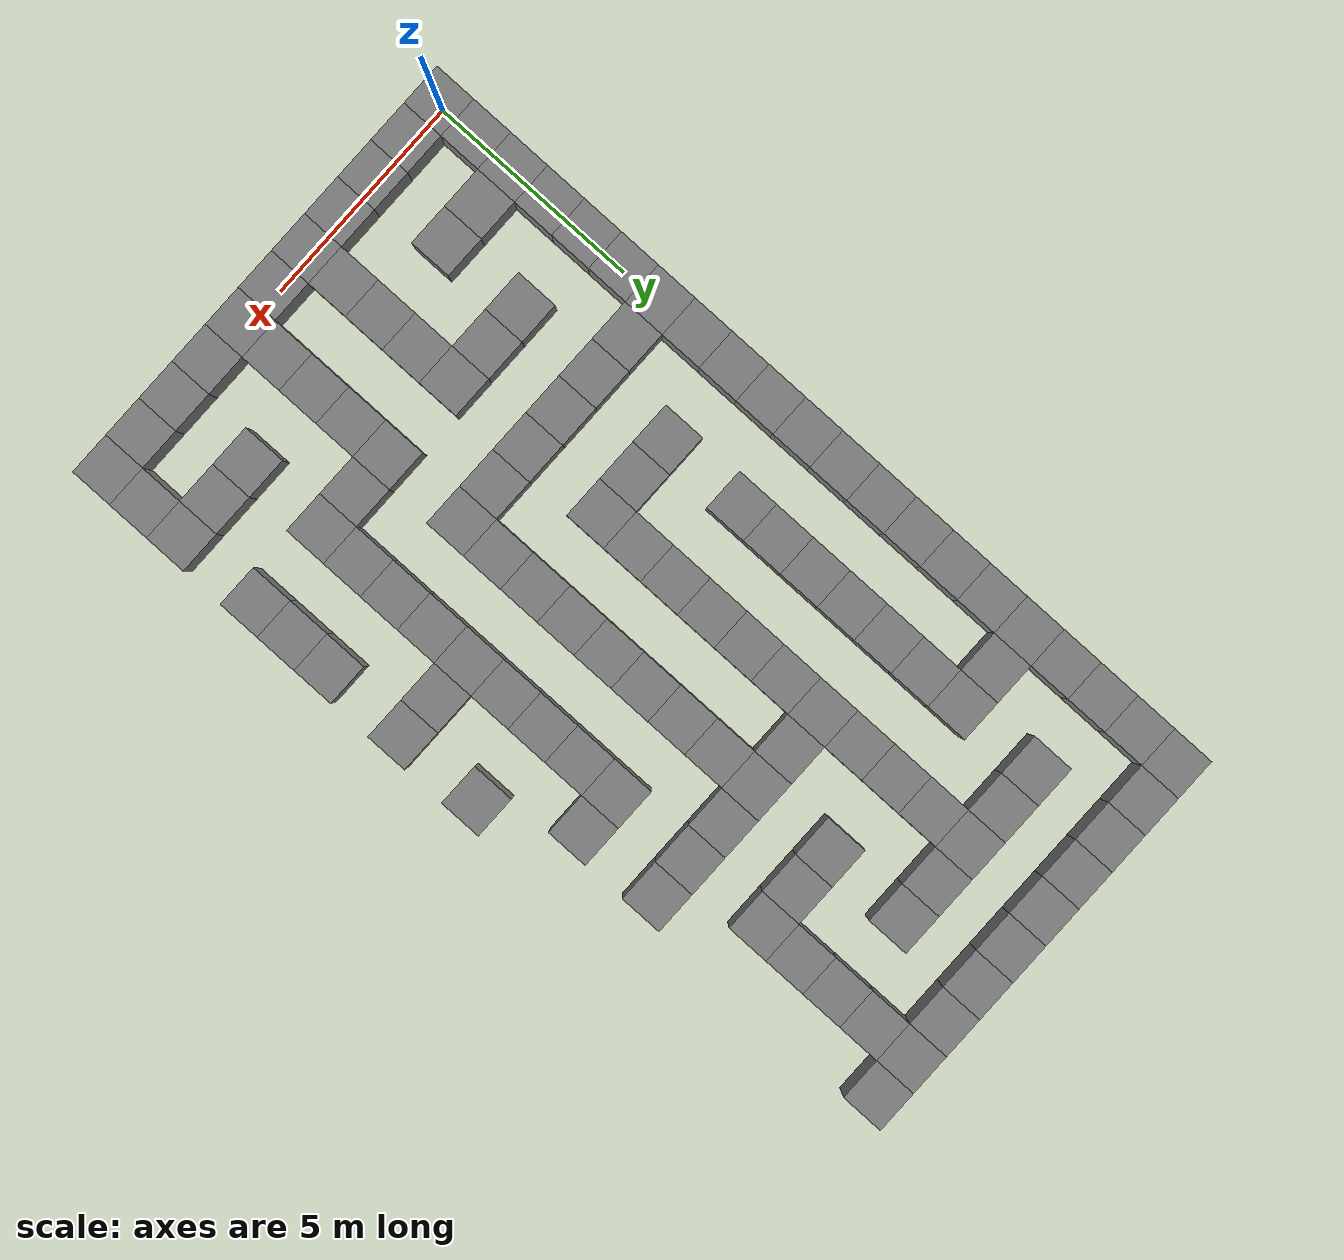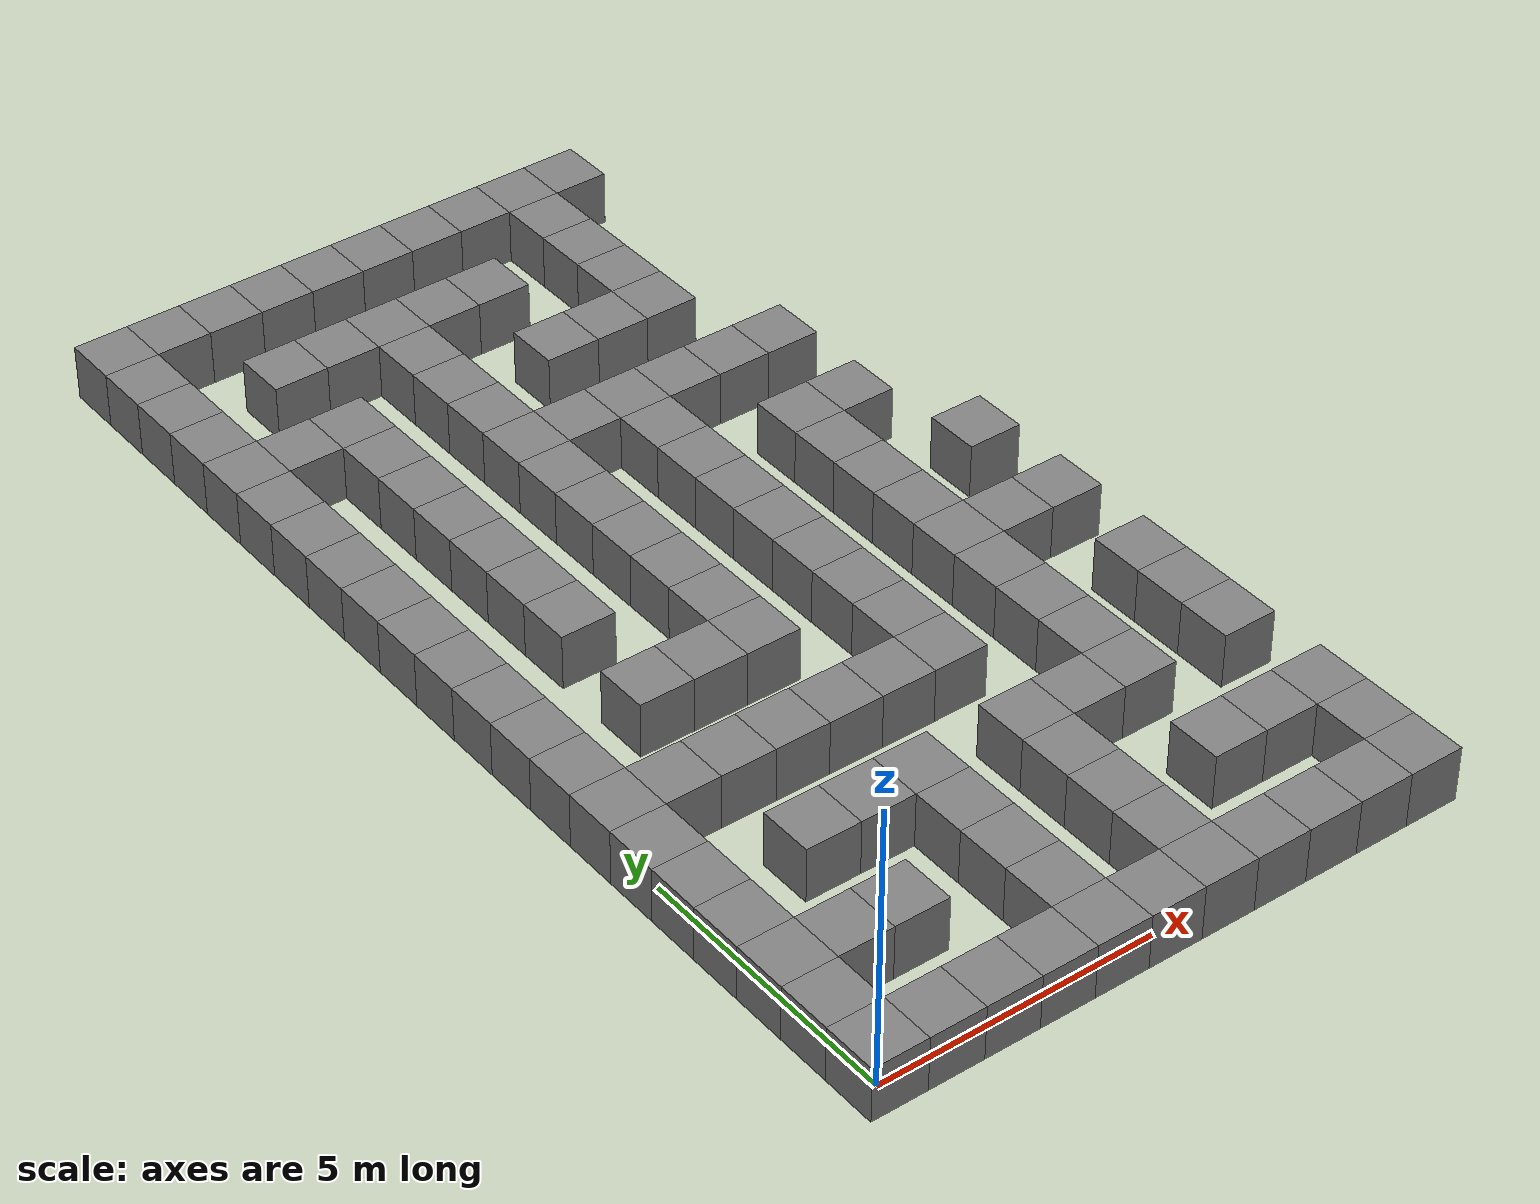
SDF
<sdf version="1.7">
 <model name="maze">
  <static>true</static>
  <link name="wall_0_0">
   <pose>0.0 0.0 0.5 0 0 0</pose>
   <collision name="collision"><geometry><box><size>1.0 1.0 1.0</size></box></geometry></collision>
   <visual name="visual">
    <geometry><box><size>1.0 1.0 1.0</size></box></geometry>
    <material><ambient>0.5 0.5 0.5 1</ambient></material>
   </visual>
  </link>
  <link name="wall_0_1">
   <pose>0.0 1.0 0.5 0 0 0</pose>
   <collision name="collision"><geometry><box><size>1.0 1.0 1.0</size></box></geometry></collision>
   <visual name="visual">
    <geometry><box><size>1.0 1.0 1.0</size></box></geometry>
    <material><ambient>0.5 0.5 0.5 1</ambient></material>
   </visual>
  </link>
  <link name="wall_0_2">
   <pose>0.0 2.0 0.5 0 0 0</pose>
   <collision name="collision"><geometry><box><size>1.0 1.0 1.0</size></box></geometry></collision>
   <visual name="visual">
    <geometry><box><size>1.0 1.0 1.0</size></box></geometry>
    <material><ambient>0.5 0.5 0.5 1</ambient></material>
   </visual>
  </link>
  <link name="wall_0_3">
   <pose>0.0 3.0 0.5 0 0 0</pose>
   <collision name="collision"><geometry><box><size>1.0 1.0 1.0</size></box></geometry></collision>
   <visual name="visual">
    <geometry><box><size>1.0 1.0 1.0</size></box></geometry>
    <material><ambient>0.5 0.5 0.5 1</ambient></material>
   </visual>
  </link>
  <link name="wall_0_4">
   <pose>0.0 4.0 0.5 0 0 0</pose>
   <collision name="collision"><geometry><box><size>1.0 1.0 1.0</size></box></geometry></collision>
   <visual name="visual">
    <geometry><box><size>1.0 1.0 1.0</size></box></geometry>
    <material><ambient>0.5 0.5 0.5 1</ambient></material>
   </visual>
  </link>
  <link name="wall_0_5">
   <pose>0.0 5.0 0.5 0 0 0</pose>
   <collision name="collision"><geometry><box><size>1.0 1.0 1.0</size></box></geometry></collision>
   <visual name="visual">
    <geometry><box><size>1.0 1.0 1.0</size></box></geometry>
    <material><ambient>0.5 0.5 0.5 1</ambient></material>
   </visual>
  </link>
  <link name="wall_0_6">
   <pose>0.0 6.0 0.5 0 0 0</pose>
   <collision name="collision"><geometry><box><size>1.0 1.0 1.0</size></box></geometry></collision>
   <visual name="visual">
    <geometry><box><size>1.0 1.0 1.0</size></box></geometry>
    <material><ambient>0.5 0.5 0.5 1</ambient></material>
   </visual>
  </link>
  <link name="wall_0_7">
   <pose>0.0 7.0 0.5 0 0 0</pose>
   <collision name="collision"><geometry><box><size>1.0 1.0 1.0</size></box></geometry></collision>
   <visual name="visual">
    <geometry><box><size>1.0 1.0 1.0</size></box></geometry>
    <material><ambient>0.5 0.5 0.5 1</ambient></material>
   </visual>
  </link>
  <link name="wall_0_8">
   <pose>0.0 8.0 0.5 0 0 0</pose>
   <collision name="collision"><geometry><box><size>1.0 1.0 1.0</size></box></geometry></collision>
   <visual name="visual">
    <geometry><box><size>1.0 1.0 1.0</size></box></geometry>
    <material><ambient>0.5 0.5 0.5 1</ambient></material>
   </visual>
  </link>
  <link name="wall_0_9">
   <pose>0.0 9.0 0.5 0 0 0</pose>
   <collision name="collision"><geometry><box><size>1.0 1.0 1.0</size></box></geometry></collision>
   <visual name="visual">
    <geometry><box><size>1.0 1.0 1.0</size></box></geometry>
    <material><ambient>0.5 0.5 0.5 1</ambient></material>
   </visual>
  </link>
  <link name="wall_0_10">
   <pose>0.0 10.0 0.5 0 0 0</pose>
   <collision name="collision"><geometry><box><size>1.0 1.0 1.0</size></box></geometry></collision>
   <visual name="visual">
    <geometry><box><size>1.0 1.0 1.0</size></box></geometry>
    <material><ambient>0.5 0.5 0.5 1</ambient></material>
   </visual>
  </link>
  <link name="wall_0_11">
   <pose>0.0 11.0 0.5 0 0 0</pose>
   <collision name="collision"><geometry><box><size>1.0 1.0 1.0</size></box></geometry></collision>
   <visual name="visual">
    <geometry><box><size>1.0 1.0 1.0</size></box></geometry>
    <material><ambient>0.5 0.5 0.5 1</ambient></material>
   </visual>
  </link>
  <link name="wall_0_12">
   <pose>0.0 12.0 0.5 0 0 0</pose>
   <collision name="collision"><geometry><box><size>1.0 1.0 1.0</size></box></geometry></collision>
   <visual name="visual">
    <geometry><box><size>1.0 1.0 1.0</size></box></geometry>
    <material><ambient>0.5 0.5 0.5 1</ambient></material>
   </visual>
  </link>
  <link name="wall_0_13">
   <pose>0.0 13.0 0.5 0 0 0</pose>
   <collision name="collision"><geometry><box><size>1.0 1.0 1.0</size></box></geometry></collision>
   <visual name="visual">
    <geometry><box><size>1.0 1.0 1.0</size></box></geometry>
    <material><ambient>0.5 0.5 0.5 1</ambient></material>
   </visual>
  </link>
  <link name="wall_0_14">
   <pose>0.0 14.0 0.5 0 0 0</pose>
   <collision name="collision"><geometry><box><size>1.0 1.0 1.0</size></box></geometry></collision>
   <visual name="visual">
    <geometry><box><size>1.0 1.0 1.0</size></box></geometry>
    <material><ambient>0.5 0.5 0.5 1</ambient></material>
   </visual>
  </link>
  <link name="wall_0_15">
   <pose>0.0 15.0 0.5 0 0 0</pose>
   <collision name="collision"><geometry><box><size>1.0 1.0 1.0</size></box></geometry></collision>
   <visual name="visual">
    <geometry><box><size>1.0 1.0 1.0</size></box></geometry>
    <material><ambient>0.5 0.5 0.5 1</ambient></material>
   </visual>
  </link>
  <link name="wall_0_16">
   <pose>0.0 16.0 0.5 0 0 0</pose>
   <collision name="collision"><geometry><box><size>1.0 1.0 1.0</size></box></geometry></collision>
   <visual name="visual">
    <geometry><box><size>1.0 1.0 1.0</size></box></geometry>
    <material><ambient>0.5 0.5 0.5 1</ambient></material>
   </visual>
  </link>
  <link name="wall_0_17">
   <pose>0.0 17.0 0.5 0 0 0</pose>
   <collision name="collision"><geometry><box><size>1.0 1.0 1.0</size></box></geometry></collision>
   <visual name="visual">
    <geometry><box><size>1.0 1.0 1.0</size></box></geometry>
    <material><ambient>0.5 0.5 0.5 1</ambient></material>
   </visual>
  </link>
  <link name="wall_0_18">
   <pose>0.0 18.0 0.5 0 0 0</pose>
   <collision name="collision"><geometry><box><size>1.0 1.0 1.0</size></box></geometry></collision>
   <visual name="visual">
    <geometry><box><size>1.0 1.0 1.0</size></box></geometry>
    <material><ambient>0.5 0.5 0.5 1</ambient></material>
   </visual>
  </link>
  <link name="wall_0_19">
   <pose>0.0 19.0 0.5 0 0 0</pose>
   <collision name="collision"><geometry><box><size>1.0 1.0 1.0</size></box></geometry></collision>
   <visual name="visual">
    <geometry><box><size>1.0 1.0 1.0</size></box></geometry>
    <material><ambient>0.5 0.5 0.5 1</ambient></material>
   </visual>
  </link>
  <link name="wall_0_20">
   <pose>0.0 20.0 0.5 0 0 0</pose>
   <collision name="collision"><geometry><box><size>1.0 1.0 1.0</size></box></geometry></collision>
   <visual name="visual">
    <geometry><box><size>1.0 1.0 1.0</size></box></geometry>
    <material><ambient>0.5 0.5 0.5 1</ambient></material>
   </visual>
  </link>
  <link name="wall_1_0">
   <pose>1.0 0.0 0.5 0 0 0</pose>
   <collision name="collision"><geometry><box><size>1.0 1.0 1.0</size></box></geometry></collision>
   <visual name="visual">
    <geometry><box><size>1.0 1.0 1.0</size></box></geometry>
    <material><ambient>0.5 0.5 0.5 1</ambient></material>
   </visual>
  </link>
  <link name="wall_1_2">
   <pose>1.0 2.0 0.5 0 0 0</pose>
   <collision name="collision"><geometry><box><size>1.0 1.0 1.0</size></box></geometry></collision>
   <visual name="visual">
    <geometry><box><size>1.0 1.0 1.0</size></box></geometry>
    <material><ambient>0.5 0.5 0.5 1</ambient></material>
   </visual>
  </link>
  <link name="wall_1_6">
   <pose>1.0 6.0 0.5 0 0 0</pose>
   <collision name="collision"><geometry><box><size>1.0 1.0 1.0</size></box></geometry></collision>
   <visual name="visual">
    <geometry><box><size>1.0 1.0 1.0</size></box></geometry>
    <material><ambient>0.5 0.5 0.5 1</ambient></material>
   </visual>
  </link>
  <link name="wall_1_16">
   <pose>1.0 16.0 0.5 0 0 0</pose>
   <collision name="collision"><geometry><box><size>1.0 1.0 1.0</size></box></geometry></collision>
   <visual name="visual">
    <geometry><box><size>1.0 1.0 1.0</size></box></geometry>
    <material><ambient>0.5 0.5 0.5 1</ambient></material>
   </visual>
  </link>
  <link name="wall_1_20">
   <pose>1.0 20.0 0.5 0 0 0</pose>
   <collision name="collision"><geometry><box><size>1.0 1.0 1.0</size></box></geometry></collision>
   <visual name="visual">
    <geometry><box><size>1.0 1.0 1.0</size></box></geometry>
    <material><ambient>0.5 0.5 0.5 1</ambient></material>
   </visual>
  </link>
  <link name="wall_2_0">
   <pose>2.0 0.0 0.5 0 0 0</pose>
   <collision name="collision"><geometry><box><size>1.0 1.0 1.0</size></box></geometry></collision>
   <visual name="visual">
    <geometry><box><size>1.0 1.0 1.0</size></box></geometry>
    <material><ambient>0.5 0.5 0.5 1</ambient></material>
   </visual>
  </link>
  <link name="wall_2_2">
   <pose>2.0 2.0 0.5 0 0 0</pose>
   <collision name="collision"><geometry><box><size>1.0 1.0 1.0</size></box></geometry></collision>
   <visual name="visual">
    <geometry><box><size>1.0 1.0 1.0</size></box></geometry>
    <material><ambient>0.5 0.5 0.5 1</ambient></material>
   </visual>
  </link>
  <link name="wall_2_4">
   <pose>2.0 4.0 0.5 0 0 0</pose>
   <collision name="collision"><geometry><box><size>1.0 1.0 1.0</size></box></geometry></collision>
   <visual name="visual">
    <geometry><box><size>1.0 1.0 1.0</size></box></geometry>
    <material><ambient>0.5 0.5 0.5 1</ambient></material>
   </visual>
  </link>
  <link name="wall_2_6">
   <pose>2.0 6.0 0.5 0 0 0</pose>
   <collision name="collision"><geometry><box><size>1.0 1.0 1.0</size></box></geometry></collision>
   <visual name="visual">
    <geometry><box><size>1.0 1.0 1.0</size></box></geometry>
    <material><ambient>0.5 0.5 0.5 1</ambient></material>
   </visual>
  </link>
  <link name="wall_2_8">
   <pose>2.0 8.0 0.5 0 0 0</pose>
   <collision name="collision"><geometry><box><size>1.0 1.0 1.0</size></box></geometry></collision>
   <visual name="visual">
    <geometry><box><size>1.0 1.0 1.0</size></box></geometry>
    <material><ambient>0.5 0.5 0.5 1</ambient></material>
   </visual>
  </link>
  <link name="wall_2_10">
   <pose>2.0 10.0 0.5 0 0 0</pose>
   <collision name="collision"><geometry><box><size>1.0 1.0 1.0</size></box></geometry></collision>
   <visual name="visual">
    <geometry><box><size>1.0 1.0 1.0</size></box></geometry>
    <material><ambient>0.5 0.5 0.5 1</ambient></material>
   </visual>
  </link>
  <link name="wall_2_11">
   <pose>2.0 11.0 0.5 0 0 0</pose>
   <collision name="collision"><geometry><box><size>1.0 1.0 1.0</size></box></geometry></collision>
   <visual name="visual">
    <geometry><box><size>1.0 1.0 1.0</size></box></geometry>
    <material><ambient>0.5 0.5 0.5 1</ambient></material>
   </visual>
  </link>
  <link name="wall_2_12">
   <pose>2.0 12.0 0.5 0 0 0</pose>
   <collision name="collision"><geometry><box><size>1.0 1.0 1.0</size></box></geometry></collision>
   <visual name="visual">
    <geometry><box><size>1.0 1.0 1.0</size></box></geometry>
    <material><ambient>0.5 0.5 0.5 1</ambient></material>
   </visual>
  </link>
  <link name="wall_2_13">
   <pose>2.0 13.0 0.5 0 0 0</pose>
   <collision name="collision"><geometry><box><size>1.0 1.0 1.0</size></box></geometry></collision>
   <visual name="visual">
    <geometry><box><size>1.0 1.0 1.0</size></box></geometry>
    <material><ambient>0.5 0.5 0.5 1</ambient></material>
   </visual>
  </link>
  <link name="wall_2_14">
   <pose>2.0 14.0 0.5 0 0 0</pose>
   <collision name="collision"><geometry><box><size>1.0 1.0 1.0</size></box></geometry></collision>
   <visual name="visual">
    <geometry><box><size>1.0 1.0 1.0</size></box></geometry>
    <material><ambient>0.5 0.5 0.5 1</ambient></material>
   </visual>
  </link>
  <link name="wall_2_15">
   <pose>2.0 15.0 0.5 0 0 0</pose>
   <collision name="collision"><geometry><box><size>1.0 1.0 1.0</size></box></geometry></collision>
   <visual name="visual">
    <geometry><box><size>1.0 1.0 1.0</size></box></geometry>
    <material><ambient>0.5 0.5 0.5 1</ambient></material>
   </visual>
  </link>
  <link name="wall_2_16">
   <pose>2.0 16.0 0.5 0 0 0</pose>
   <collision name="collision"><geometry><box><size>1.0 1.0 1.0</size></box></geometry></collision>
   <visual name="visual">
    <geometry><box><size>1.0 1.0 1.0</size></box></geometry>
    <material><ambient>0.5 0.5 0.5 1</ambient></material>
   </visual>
  </link>
  <link name="wall_2_18">
   <pose>2.0 18.0 0.5 0 0 0</pose>
   <collision name="collision"><geometry><box><size>1.0 1.0 1.0</size></box></geometry></collision>
   <visual name="visual">
    <geometry><box><size>1.0 1.0 1.0</size></box></geometry>
    <material><ambient>0.5 0.5 0.5 1</ambient></material>
   </visual>
  </link>
  <link name="wall_2_20">
   <pose>2.0 20.0 0.5 0 0 0</pose>
   <collision name="collision"><geometry><box><size>1.0 1.0 1.0</size></box></geometry></collision>
   <visual name="visual">
    <geometry><box><size>1.0 1.0 1.0</size></box></geometry>
    <material><ambient>0.5 0.5 0.5 1</ambient></material>
   </visual>
  </link>
  <link name="wall_3_0">
   <pose>3.0 0.0 0.5 0 0 0</pose>
   <collision name="collision"><geometry><box><size>1.0 1.0 1.0</size></box></geometry></collision>
   <visual name="visual">
    <geometry><box><size>1.0 1.0 1.0</size></box></geometry>
    <material><ambient>0.5 0.5 0.5 1</ambient></material>
   </visual>
  </link>
  <link name="wall_3_4">
   <pose>3.0 4.0 0.5 0 0 0</pose>
   <collision name="collision"><geometry><box><size>1.0 1.0 1.0</size></box></geometry></collision>
   <visual name="visual">
    <geometry><box><size>1.0 1.0 1.0</size></box></geometry>
    <material><ambient>0.5 0.5 0.5 1</ambient></material>
   </visual>
  </link>
  <link name="wall_3_6">
   <pose>3.0 6.0 0.5 0 0 0</pose>
   <collision name="collision"><geometry><box><size>1.0 1.0 1.0</size></box></geometry></collision>
   <visual name="visual">
    <geometry><box><size>1.0 1.0 1.0</size></box></geometry>
    <material><ambient>0.5 0.5 0.5 1</ambient></material>
   </visual>
  </link>
  <link name="wall_3_8">
   <pose>3.0 8.0 0.5 0 0 0</pose>
   <collision name="collision"><geometry><box><size>1.0 1.0 1.0</size></box></geometry></collision>
   <visual name="visual">
    <geometry><box><size>1.0 1.0 1.0</size></box></geometry>
    <material><ambient>0.5 0.5 0.5 1</ambient></material>
   </visual>
  </link>
  <link name="wall_3_18">
   <pose>3.0 18.0 0.5 0 0 0</pose>
   <collision name="collision"><geometry><box><size>1.0 1.0 1.0</size></box></geometry></collision>
   <visual name="visual">
    <geometry><box><size>1.0 1.0 1.0</size></box></geometry>
    <material><ambient>0.5 0.5 0.5 1</ambient></material>
   </visual>
  </link>
  <link name="wall_3_20">
   <pose>3.0 20.0 0.5 0 0 0</pose>
   <collision name="collision"><geometry><box><size>1.0 1.0 1.0</size></box></geometry></collision>
   <visual name="visual">
    <geometry><box><size>1.0 1.0 1.0</size></box></geometry>
    <material><ambient>0.5 0.5 0.5 1</ambient></material>
   </visual>
  </link>
  <link name="wall_4_0">
   <pose>4.0 0.0 0.5 0 0 0</pose>
   <collision name="collision"><geometry><box><size>1.0 1.0 1.0</size></box></geometry></collision>
   <visual name="visual">
    <geometry><box><size>1.0 1.0 1.0</size></box></geometry>
    <material><ambient>0.5 0.5 0.5 1</ambient></material>
   </visual>
  </link>
  <link name="wall_4_1">
   <pose>4.0 1.0 0.5 0 0 0</pose>
   <collision name="collision"><geometry><box><size>1.0 1.0 1.0</size></box></geometry></collision>
   <visual name="visual">
    <geometry><box><size>1.0 1.0 1.0</size></box></geometry>
    <material><ambient>0.5 0.5 0.5 1</ambient></material>
   </visual>
  </link>
  <link name="wall_4_2">
   <pose>4.0 2.0 0.5 0 0 0</pose>
   <collision name="collision"><geometry><box><size>1.0 1.0 1.0</size></box></geometry></collision>
   <visual name="visual">
    <geometry><box><size>1.0 1.0 1.0</size></box></geometry>
    <material><ambient>0.5 0.5 0.5 1</ambient></material>
   </visual>
  </link>
  <link name="wall_4_3">
   <pose>4.0 3.0 0.5 0 0 0</pose>
   <collision name="collision"><geometry><box><size>1.0 1.0 1.0</size></box></geometry></collision>
   <visual name="visual">
    <geometry><box><size>1.0 1.0 1.0</size></box></geometry>
    <material><ambient>0.5 0.5 0.5 1</ambient></material>
   </visual>
  </link>
  <link name="wall_4_4">
   <pose>4.0 4.0 0.5 0 0 0</pose>
   <collision name="collision"><geometry><box><size>1.0 1.0 1.0</size></box></geometry></collision>
   <visual name="visual">
    <geometry><box><size>1.0 1.0 1.0</size></box></geometry>
    <material><ambient>0.5 0.5 0.5 1</ambient></material>
   </visual>
  </link>
  <link name="wall_4_6">
   <pose>4.0 6.0 0.5 0 0 0</pose>
   <collision name="collision"><geometry><box><size>1.0 1.0 1.0</size></box></geometry></collision>
   <visual name="visual">
    <geometry><box><size>1.0 1.0 1.0</size></box></geometry>
    <material><ambient>0.5 0.5 0.5 1</ambient></material>
   </visual>
  </link>
  <link name="wall_4_8">
   <pose>4.0 8.0 0.5 0 0 0</pose>
   <collision name="collision"><geometry><box><size>1.0 1.0 1.0</size></box></geometry></collision>
   <visual name="visual">
    <geometry><box><size>1.0 1.0 1.0</size></box></geometry>
    <material><ambient>0.5 0.5 0.5 1</ambient></material>
   </visual>
  </link>
  <link name="wall_4_9">
   <pose>4.0 9.0 0.5 0 0 0</pose>
   <collision name="collision"><geometry><box><size>1.0 1.0 1.0</size></box></geometry></collision>
   <visual name="visual">
    <geometry><box><size>1.0 1.0 1.0</size></box></geometry>
    <material><ambient>0.5 0.5 0.5 1</ambient></material>
   </visual>
  </link>
  <link name="wall_4_10">
   <pose>4.0 10.0 0.5 0 0 0</pose>
   <collision name="collision"><geometry><box><size>1.0 1.0 1.0</size></box></geometry></collision>
   <visual name="visual">
    <geometry><box><size>1.0 1.0 1.0</size></box></geometry>
    <material><ambient>0.5 0.5 0.5 1</ambient></material>
   </visual>
  </link>
  <link name="wall_4_11">
   <pose>4.0 11.0 0.5 0 0 0</pose>
   <collision name="collision"><geometry><box><size>1.0 1.0 1.0</size></box></geometry></collision>
   <visual name="visual">
    <geometry><box><size>1.0 1.0 1.0</size></box></geometry>
    <material><ambient>0.5 0.5 0.5 1</ambient></material>
   </visual>
  </link>
  <link name="wall_4_12">
   <pose>4.0 12.0 0.5 0 0 0</pose>
   <collision name="collision"><geometry><box><size>1.0 1.0 1.0</size></box></geometry></collision>
   <visual name="visual">
    <geometry><box><size>1.0 1.0 1.0</size></box></geometry>
    <material><ambient>0.5 0.5 0.5 1</ambient></material>
   </visual>
  </link>
  <link name="wall_4_13">
   <pose>4.0 13.0 0.5 0 0 0</pose>
   <collision name="collision"><geometry><box><size>1.0 1.0 1.0</size></box></geometry></collision>
   <visual name="visual">
    <geometry><box><size>1.0 1.0 1.0</size></box></geometry>
    <material><ambient>0.5 0.5 0.5 1</ambient></material>
   </visual>
  </link>
  <link name="wall_4_14">
   <pose>4.0 14.0 0.5 0 0 0</pose>
   <collision name="collision"><geometry><box><size>1.0 1.0 1.0</size></box></geometry></collision>
   <visual name="visual">
    <geometry><box><size>1.0 1.0 1.0</size></box></geometry>
    <material><ambient>0.5 0.5 0.5 1</ambient></material>
   </visual>
  </link>
  <link name="wall_4_15">
   <pose>4.0 15.0 0.5 0 0 0</pose>
   <collision name="collision"><geometry><box><size>1.0 1.0 1.0</size></box></geometry></collision>
   <visual name="visual">
    <geometry><box><size>1.0 1.0 1.0</size></box></geometry>
    <material><ambient>0.5 0.5 0.5 1</ambient></material>
   </visual>
  </link>
  <link name="wall_4_16">
   <pose>4.0 16.0 0.5 0 0 0</pose>
   <collision name="collision"><geometry><box><size>1.0 1.0 1.0</size></box></geometry></collision>
   <visual name="visual">
    <geometry><box><size>1.0 1.0 1.0</size></box></geometry>
    <material><ambient>0.5 0.5 0.5 1</ambient></material>
   </visual>
  </link>
  <link name="wall_4_17">
   <pose>4.0 17.0 0.5 0 0 0</pose>
   <collision name="collision"><geometry><box><size>1.0 1.0 1.0</size></box></geometry></collision>
   <visual name="visual">
    <geometry><box><size>1.0 1.0 1.0</size></box></geometry>
    <material><ambient>0.5 0.5 0.5 1</ambient></material>
   </visual>
  </link>
  <link name="wall_4_18">
   <pose>4.0 18.0 0.5 0 0 0</pose>
   <collision name="collision"><geometry><box><size>1.0 1.0 1.0</size></box></geometry></collision>
   <visual name="visual">
    <geometry><box><size>1.0 1.0 1.0</size></box></geometry>
    <material><ambient>0.5 0.5 0.5 1</ambient></material>
   </visual>
  </link>
  <link name="wall_4_20">
   <pose>4.0 20.0 0.5 0 0 0</pose>
   <collision name="collision"><geometry><box><size>1.0 1.0 1.0</size></box></geometry></collision>
   <visual name="visual">
    <geometry><box><size>1.0 1.0 1.0</size></box></geometry>
    <material><ambient>0.5 0.5 0.5 1</ambient></material>
   </visual>
  </link>
  <link name="wall_5_0">
   <pose>5.0 0.0 0.5 0 0 0</pose>
   <collision name="collision"><geometry><box><size>1.0 1.0 1.0</size></box></geometry></collision>
   <visual name="visual">
    <geometry><box><size>1.0 1.0 1.0</size></box></geometry>
    <material><ambient>0.5 0.5 0.5 1</ambient></material>
   </visual>
  </link>
  <link name="wall_5_6">
   <pose>5.0 6.0 0.5 0 0 0</pose>
   <collision name="collision"><geometry><box><size>1.0 1.0 1.0</size></box></geometry></collision>
   <visual name="visual">
    <geometry><box><size>1.0 1.0 1.0</size></box></geometry>
    <material><ambient>0.5 0.5 0.5 1</ambient></material>
   </visual>
  </link>
  <link name="wall_5_14">
   <pose>5.0 14.0 0.5 0 0 0</pose>
   <collision name="collision"><geometry><box><size>1.0 1.0 1.0</size></box></geometry></collision>
   <visual name="visual">
    <geometry><box><size>1.0 1.0 1.0</size></box></geometry>
    <material><ambient>0.5 0.5 0.5 1</ambient></material>
   </visual>
  </link>
  <link name="wall_5_18">
   <pose>5.0 18.0 0.5 0 0 0</pose>
   <collision name="collision"><geometry><box><size>1.0 1.0 1.0</size></box></geometry></collision>
   <visual name="visual">
    <geometry><box><size>1.0 1.0 1.0</size></box></geometry>
    <material><ambient>0.5 0.5 0.5 1</ambient></material>
   </visual>
  </link>
  <link name="wall_5_20">
   <pose>5.0 20.0 0.5 0 0 0</pose>
   <collision name="collision"><geometry><box><size>1.0 1.0 1.0</size></box></geometry></collision>
   <visual name="visual">
    <geometry><box><size>1.0 1.0 1.0</size></box></geometry>
    <material><ambient>0.5 0.5 0.5 1</ambient></material>
   </visual>
  </link>
  <link name="wall_6_0">
   <pose>6.0 0.0 0.5 0 0 0</pose>
   <collision name="collision"><geometry><box><size>1.0 1.0 1.0</size></box></geometry></collision>
   <visual name="visual">
    <geometry><box><size>1.0 1.0 1.0</size></box></geometry>
    <material><ambient>0.5 0.5 0.5 1</ambient></material>
   </visual>
  </link>
  <link name="wall_6_1">
   <pose>6.0 1.0 0.5 0 0 0</pose>
   <collision name="collision"><geometry><box><size>1.0 1.0 1.0</size></box></geometry></collision>
   <visual name="visual">
    <geometry><box><size>1.0 1.0 1.0</size></box></geometry>
    <material><ambient>0.5 0.5 0.5 1</ambient></material>
   </visual>
  </link>
  <link name="wall_6_2">
   <pose>6.0 2.0 0.5 0 0 0</pose>
   <collision name="collision"><geometry><box><size>1.0 1.0 1.0</size></box></geometry></collision>
   <visual name="visual">
    <geometry><box><size>1.0 1.0 1.0</size></box></geometry>
    <material><ambient>0.5 0.5 0.5 1</ambient></material>
   </visual>
  </link>
  <link name="wall_6_3">
   <pose>6.0 3.0 0.5 0 0 0</pose>
   <collision name="collision"><geometry><box><size>1.0 1.0 1.0</size></box></geometry></collision>
   <visual name="visual">
    <geometry><box><size>1.0 1.0 1.0</size></box></geometry>
    <material><ambient>0.5 0.5 0.5 1</ambient></material>
   </visual>
  </link>
  <link name="wall_6_4">
   <pose>6.0 4.0 0.5 0 0 0</pose>
   <collision name="collision"><geometry><box><size>1.0 1.0 1.0</size></box></geometry></collision>
   <visual name="visual">
    <geometry><box><size>1.0 1.0 1.0</size></box></geometry>
    <material><ambient>0.5 0.5 0.5 1</ambient></material>
   </visual>
  </link>
  <link name="wall_6_6">
   <pose>6.0 6.0 0.5 0 0 0</pose>
   <collision name="collision"><geometry><box><size>1.0 1.0 1.0</size></box></geometry></collision>
   <visual name="visual">
    <geometry><box><size>1.0 1.0 1.0</size></box></geometry>
    <material><ambient>0.5 0.5 0.5 1</ambient></material>
   </visual>
  </link>
  <link name="wall_6_7">
   <pose>6.0 7.0 0.5 0 0 0</pose>
   <collision name="collision"><geometry><box><size>1.0 1.0 1.0</size></box></geometry></collision>
   <visual name="visual">
    <geometry><box><size>1.0 1.0 1.0</size></box></geometry>
    <material><ambient>0.5 0.5 0.5 1</ambient></material>
   </visual>
  </link>
  <link name="wall_6_8">
   <pose>6.0 8.0 0.5 0 0 0</pose>
   <collision name="collision"><geometry><box><size>1.0 1.0 1.0</size></box></geometry></collision>
   <visual name="visual">
    <geometry><box><size>1.0 1.0 1.0</size></box></geometry>
    <material><ambient>0.5 0.5 0.5 1</ambient></material>
   </visual>
  </link>
  <link name="wall_6_9">
   <pose>6.0 9.0 0.5 0 0 0</pose>
   <collision name="collision"><geometry><box><size>1.0 1.0 1.0</size></box></geometry></collision>
   <visual name="visual">
    <geometry><box><size>1.0 1.0 1.0</size></box></geometry>
    <material><ambient>0.5 0.5 0.5 1</ambient></material>
   </visual>
  </link>
  <link name="wall_6_10">
   <pose>6.0 10.0 0.5 0 0 0</pose>
   <collision name="collision"><geometry><box><size>1.0 1.0 1.0</size></box></geometry></collision>
   <visual name="visual">
    <geometry><box><size>1.0 1.0 1.0</size></box></geometry>
    <material><ambient>0.5 0.5 0.5 1</ambient></material>
   </visual>
  </link>
  <link name="wall_6_11">
   <pose>6.0 11.0 0.5 0 0 0</pose>
   <collision name="collision"><geometry><box><size>1.0 1.0 1.0</size></box></geometry></collision>
   <visual name="visual">
    <geometry><box><size>1.0 1.0 1.0</size></box></geometry>
    <material><ambient>0.5 0.5 0.5 1</ambient></material>
   </visual>
  </link>
  <link name="wall_6_12">
   <pose>6.0 12.0 0.5 0 0 0</pose>
   <collision name="collision"><geometry><box><size>1.0 1.0 1.0</size></box></geometry></collision>
   <visual name="visual">
    <geometry><box><size>1.0 1.0 1.0</size></box></geometry>
    <material><ambient>0.5 0.5 0.5 1</ambient></material>
   </visual>
  </link>
  <link name="wall_6_13">
   <pose>6.0 13.0 0.5 0 0 0</pose>
   <collision name="collision"><geometry><box><size>1.0 1.0 1.0</size></box></geometry></collision>
   <visual name="visual">
    <geometry><box><size>1.0 1.0 1.0</size></box></geometry>
    <material><ambient>0.5 0.5 0.5 1</ambient></material>
   </visual>
  </link>
  <link name="wall_6_14">
   <pose>6.0 14.0 0.5 0 0 0</pose>
   <collision name="collision"><geometry><box><size>1.0 1.0 1.0</size></box></geometry></collision>
   <visual name="visual">
    <geometry><box><size>1.0 1.0 1.0</size></box></geometry>
    <material><ambient>0.5 0.5 0.5 1</ambient></material>
   </visual>
  </link>
  <link name="wall_6_16">
   <pose>6.0 16.0 0.5 0 0 0</pose>
   <collision name="collision"><geometry><box><size>1.0 1.0 1.0</size></box></geometry></collision>
   <visual name="visual">
    <geometry><box><size>1.0 1.0 1.0</size></box></geometry>
    <material><ambient>0.5 0.5 0.5 1</ambient></material>
   </visual>
  </link>
  <link name="wall_6_18">
   <pose>6.0 18.0 0.5 0 0 0</pose>
   <collision name="collision"><geometry><box><size>1.0 1.0 1.0</size></box></geometry></collision>
   <visual name="visual">
    <geometry><box><size>1.0 1.0 1.0</size></box></geometry>
    <material><ambient>0.5 0.5 0.5 1</ambient></material>
   </visual>
  </link>
  <link name="wall_6_20">
   <pose>6.0 20.0 0.5 0 0 0</pose>
   <collision name="collision"><geometry><box><size>1.0 1.0 1.0</size></box></geometry></collision>
   <visual name="visual">
    <geometry><box><size>1.0 1.0 1.0</size></box></geometry>
    <material><ambient>0.5 0.5 0.5 1</ambient></material>
   </visual>
  </link>
  <link name="wall_7_0">
   <pose>7.0 0.0 0.5 0 0 0</pose>
   <collision name="collision"><geometry><box><size>1.0 1.0 1.0</size></box></geometry></collision>
   <visual name="visual">
    <geometry><box><size>1.0 1.0 1.0</size></box></geometry>
    <material><ambient>0.5 0.5 0.5 1</ambient></material>
   </visual>
  </link>
  <link name="wall_7_4">
   <pose>7.0 4.0 0.5 0 0 0</pose>
   <collision name="collision"><geometry><box><size>1.0 1.0 1.0</size></box></geometry></collision>
   <visual name="visual">
    <geometry><box><size>1.0 1.0 1.0</size></box></geometry>
    <material><ambient>0.5 0.5 0.5 1</ambient></material>
   </visual>
  </link>
  <link name="wall_7_14">
   <pose>7.0 14.0 0.5 0 0 0</pose>
   <collision name="collision"><geometry><box><size>1.0 1.0 1.0</size></box></geometry></collision>
   <visual name="visual">
    <geometry><box><size>1.0 1.0 1.0</size></box></geometry>
    <material><ambient>0.5 0.5 0.5 1</ambient></material>
   </visual>
  </link>
  <link name="wall_7_16">
   <pose>7.0 16.0 0.5 0 0 0</pose>
   <collision name="collision"><geometry><box><size>1.0 1.0 1.0</size></box></geometry></collision>
   <visual name="visual">
    <geometry><box><size>1.0 1.0 1.0</size></box></geometry>
    <material><ambient>0.5 0.5 0.5 1</ambient></material>
   </visual>
  </link>
  <link name="wall_7_20">
   <pose>7.0 20.0 0.5 0 0 0</pose>
   <collision name="collision"><geometry><box><size>1.0 1.0 1.0</size></box></geometry></collision>
   <visual name="visual">
    <geometry><box><size>1.0 1.0 1.0</size></box></geometry>
    <material><ambient>0.5 0.5 0.5 1</ambient></material>
   </visual>
  </link>
  <link name="wall_8_0">
   <pose>8.0 0.0 0.5 0 0 0</pose>
   <collision name="collision"><geometry><box><size>1.0 1.0 1.0</size></box></geometry></collision>
   <visual name="visual">
    <geometry><box><size>1.0 1.0 1.0</size></box></geometry>
    <material><ambient>0.5 0.5 0.5 1</ambient></material>
   </visual>
  </link>
  <link name="wall_8_2">
   <pose>8.0 2.0 0.5 0 0 0</pose>
   <collision name="collision"><geometry><box><size>1.0 1.0 1.0</size></box></geometry></collision>
   <visual name="visual">
    <geometry><box><size>1.0 1.0 1.0</size></box></geometry>
    <material><ambient>0.5 0.5 0.5 1</ambient></material>
   </visual>
  </link>
  <link name="wall_8_4">
   <pose>8.0 4.0 0.5 0 0 0</pose>
   <collision name="collision"><geometry><box><size>1.0 1.0 1.0</size></box></geometry></collision>
   <visual name="visual">
    <geometry><box><size>1.0 1.0 1.0</size></box></geometry>
    <material><ambient>0.5 0.5 0.5 1</ambient></material>
   </visual>
  </link>
  <link name="wall_8_5">
   <pose>8.0 5.0 0.5 0 0 0</pose>
   <collision name="collision"><geometry><box><size>1.0 1.0 1.0</size></box></geometry></collision>
   <visual name="visual">
    <geometry><box><size>1.0 1.0 1.0</size></box></geometry>
    <material><ambient>0.5 0.5 0.5 1</ambient></material>
   </visual>
  </link>
  <link name="wall_8_6">
   <pose>8.0 6.0 0.5 0 0 0</pose>
   <collision name="collision"><geometry><box><size>1.0 1.0 1.0</size></box></geometry></collision>
   <visual name="visual">
    <geometry><box><size>1.0 1.0 1.0</size></box></geometry>
    <material><ambient>0.5 0.5 0.5 1</ambient></material>
   </visual>
  </link>
  <link name="wall_8_7">
   <pose>8.0 7.0 0.5 0 0 0</pose>
   <collision name="collision"><geometry><box><size>1.0 1.0 1.0</size></box></geometry></collision>
   <visual name="visual">
    <geometry><box><size>1.0 1.0 1.0</size></box></geometry>
    <material><ambient>0.5 0.5 0.5 1</ambient></material>
   </visual>
  </link>
  <link name="wall_8_8">
   <pose>8.0 8.0 0.5 0 0 0</pose>
   <collision name="collision"><geometry><box><size>1.0 1.0 1.0</size></box></geometry></collision>
   <visual name="visual">
    <geometry><box><size>1.0 1.0 1.0</size></box></geometry>
    <material><ambient>0.5 0.5 0.5 1</ambient></material>
   </visual>
  </link>
  <link name="wall_8_9">
   <pose>8.0 9.0 0.5 0 0 0</pose>
   <collision name="collision"><geometry><box><size>1.0 1.0 1.0</size></box></geometry></collision>
   <visual name="visual">
    <geometry><box><size>1.0 1.0 1.0</size></box></geometry>
    <material><ambient>0.5 0.5 0.5 1</ambient></material>
   </visual>
  </link>
  <link name="wall_8_10">
   <pose>8.0 10.0 0.5 0 0 0</pose>
   <collision name="collision"><geometry><box><size>1.0 1.0 1.0</size></box></geometry></collision>
   <visual name="visual">
    <geometry><box><size>1.0 1.0 1.0</size></box></geometry>
    <material><ambient>0.5 0.5 0.5 1</ambient></material>
   </visual>
  </link>
  <link name="wall_8_11">
   <pose>8.0 11.0 0.5 0 0 0</pose>
   <collision name="collision"><geometry><box><size>1.0 1.0 1.0</size></box></geometry></collision>
   <visual name="visual">
    <geometry><box><size>1.0 1.0 1.0</size></box></geometry>
    <material><ambient>0.5 0.5 0.5 1</ambient></material>
   </visual>
  </link>
  <link name="wall_8_12">
   <pose>8.0 12.0 0.5 0 0 0</pose>
   <collision name="collision"><geometry><box><size>1.0 1.0 1.0</size></box></geometry></collision>
   <visual name="visual">
    <geometry><box><size>1.0 1.0 1.0</size></box></geometry>
    <material><ambient>0.5 0.5 0.5 1</ambient></material>
   </visual>
  </link>
  <link name="wall_8_14">
   <pose>8.0 14.0 0.5 0 0 0</pose>
   <collision name="collision"><geometry><box><size>1.0 1.0 1.0</size></box></geometry></collision>
   <visual name="visual">
    <geometry><box><size>1.0 1.0 1.0</size></box></geometry>
    <material><ambient>0.5 0.5 0.5 1</ambient></material>
   </visual>
  </link>
  <link name="wall_8_16">
   <pose>8.0 16.0 0.5 0 0 0</pose>
   <collision name="collision"><geometry><box><size>1.0 1.0 1.0</size></box></geometry></collision>
   <visual name="visual">
    <geometry><box><size>1.0 1.0 1.0</size></box></geometry>
    <material><ambient>0.5 0.5 0.5 1</ambient></material>
   </visual>
  </link>
  <link name="wall_8_17">
   <pose>8.0 17.0 0.5 0 0 0</pose>
   <collision name="collision"><geometry><box><size>1.0 1.0 1.0</size></box></geometry></collision>
   <visual name="visual">
    <geometry><box><size>1.0 1.0 1.0</size></box></geometry>
    <material><ambient>0.5 0.5 0.5 1</ambient></material>
   </visual>
  </link>
  <link name="wall_8_18">
   <pose>8.0 18.0 0.5 0 0 0</pose>
   <collision name="collision"><geometry><box><size>1.0 1.0 1.0</size></box></geometry></collision>
   <visual name="visual">
    <geometry><box><size>1.0 1.0 1.0</size></box></geometry>
    <material><ambient>0.5 0.5 0.5 1</ambient></material>
   </visual>
  </link>
  <link name="wall_8_19">
   <pose>8.0 19.0 0.5 0 0 0</pose>
   <collision name="collision"><geometry><box><size>1.0 1.0 1.0</size></box></geometry></collision>
   <visual name="visual">
    <geometry><box><size>1.0 1.0 1.0</size></box></geometry>
    <material><ambient>0.5 0.5 0.5 1</ambient></material>
   </visual>
  </link>
  <link name="wall_8_20">
   <pose>8.0 20.0 0.5 0 0 0</pose>
   <collision name="collision"><geometry><box><size>1.0 1.0 1.0</size></box></geometry></collision>
   <visual name="visual">
    <geometry><box><size>1.0 1.0 1.0</size></box></geometry>
    <material><ambient>0.5 0.5 0.5 1</ambient></material>
   </visual>
  </link>
  <link name="wall_9_0">
   <pose>9.0 0.0 0.5 0 0 0</pose>
   <collision name="collision"><geometry><box><size>1.0 1.0 1.0</size></box></geometry></collision>
   <visual name="visual">
    <geometry><box><size>1.0 1.0 1.0</size></box></geometry>
    <material><ambient>0.5 0.5 0.5 1</ambient></material>
   </visual>
  </link>
  <link name="wall_9_2">
   <pose>9.0 2.0 0.5 0 0 0</pose>
   <collision name="collision"><geometry><box><size>1.0 1.0 1.0</size></box></geometry></collision>
   <visual name="visual">
    <geometry><box><size>1.0 1.0 1.0</size></box></geometry>
    <material><ambient>0.5 0.5 0.5 1</ambient></material>
   </visual>
  </link>
  <link name="wall_9_8">
   <pose>9.0 8.0 0.5 0 0 0</pose>
   <collision name="collision"><geometry><box><size>1.0 1.0 1.0</size></box></geometry></collision>
   <visual name="visual">
    <geometry><box><size>1.0 1.0 1.0</size></box></geometry>
    <material><ambient>0.5 0.5 0.5 1</ambient></material>
   </visual>
  </link>
  <link name="wall_9_12">
   <pose>9.0 12.0 0.5 0 0 0</pose>
   <collision name="collision"><geometry><box><size>1.0 1.0 1.0</size></box></geometry></collision>
   <visual name="visual">
    <geometry><box><size>1.0 1.0 1.0</size></box></geometry>
    <material><ambient>0.5 0.5 0.5 1</ambient></material>
   </visual>
  </link>
  <link name="wall_9_14">
   <pose>9.0 14.0 0.5 0 0 0</pose>
   <collision name="collision"><geometry><box><size>1.0 1.0 1.0</size></box></geometry></collision>
   <visual name="visual">
    <geometry><box><size>1.0 1.0 1.0</size></box></geometry>
    <material><ambient>0.5 0.5 0.5 1</ambient></material>
   </visual>
  </link>
  <link name="wall_9_20">
   <pose>9.0 20.0 0.5 0 0 0</pose>
   <collision name="collision"><geometry><box><size>1.0 1.0 1.0</size></box></geometry></collision>
   <visual name="visual">
    <geometry><box><size>1.0 1.0 1.0</size></box></geometry>
    <material><ambient>0.5 0.5 0.5 1</ambient></material>
   </visual>
  </link>
  <link name="wall_10_0">
   <pose>10.0 0.0 0.5 0 0 0</pose>
   <collision name="collision"><geometry><box><size>1.0 1.0 1.0</size></box></geometry></collision>
   <visual name="visual">
    <geometry><box><size>1.0 1.0 1.0</size></box></geometry>
    <material><ambient>0.5 0.5 0.5 1</ambient></material>
   </visual>
  </link>
  <link name="wall_10_1">
   <pose>10.0 1.0 0.5 0 0 0</pose>
   <collision name="collision"><geometry><box><size>1.0 1.0 1.0</size></box></geometry></collision>
   <visual name="visual">
    <geometry><box><size>1.0 1.0 1.0</size></box></geometry>
    <material><ambient>0.5 0.5 0.5 1</ambient></material>
   </visual>
  </link>
  <link name="wall_10_2">
   <pose>10.0 2.0 0.5 0 0 0</pose>
   <collision name="collision"><geometry><box><size>1.0 1.0 1.0</size></box></geometry></collision>
   <visual name="visual">
    <geometry><box><size>1.0 1.0 1.0</size></box></geometry>
    <material><ambient>0.5 0.5 0.5 1</ambient></material>
   </visual>
  </link>
  <link name="wall_10_4">
   <pose>10.0 4.0 0.5 0 0 0</pose>
   <collision name="collision"><geometry><box><size>1.0 1.0 1.0</size></box></geometry></collision>
   <visual name="visual">
    <geometry><box><size>1.0 1.0 1.0</size></box></geometry>
    <material><ambient>0.5 0.5 0.5 1</ambient></material>
   </visual>
  </link>
  <link name="wall_10_5">
   <pose>10.0 5.0 0.5 0 0 0</pose>
   <collision name="collision"><geometry><box><size>1.0 1.0 1.0</size></box></geometry></collision>
   <visual name="visual">
    <geometry><box><size>1.0 1.0 1.0</size></box></geometry>
    <material><ambient>0.5 0.5 0.5 1</ambient></material>
   </visual>
  </link>
  <link name="wall_10_6">
   <pose>10.0 6.0 0.5 0 0 0</pose>
   <collision name="collision"><geometry><box><size>1.0 1.0 1.0</size></box></geometry></collision>
   <visual name="visual">
    <geometry><box><size>1.0 1.0 1.0</size></box></geometry>
    <material><ambient>0.5 0.5 0.5 1</ambient></material>
   </visual>
  </link>
  <link name="wall_10_8">
   <pose>10.0 8.0 0.5 0 0 0</pose>
   <collision name="collision"><geometry><box><size>1.0 1.0 1.0</size></box></geometry></collision>
   <visual name="visual">
    <geometry><box><size>1.0 1.0 1.0</size></box></geometry>
    <material><ambient>0.5 0.5 0.5 1</ambient></material>
   </visual>
  </link>
  <link name="wall_10_10">
   <pose>10.0 10.0 0.5 0 0 0</pose>
   <collision name="collision"><geometry><box><size>1.0 1.0 1.0</size></box></geometry></collision>
   <visual name="visual">
    <geometry><box><size>1.0 1.0 1.0</size></box></geometry>
    <material><ambient>0.5 0.5 0.5 1</ambient></material>
   </visual>
  </link>
 </model>
</sdf>
